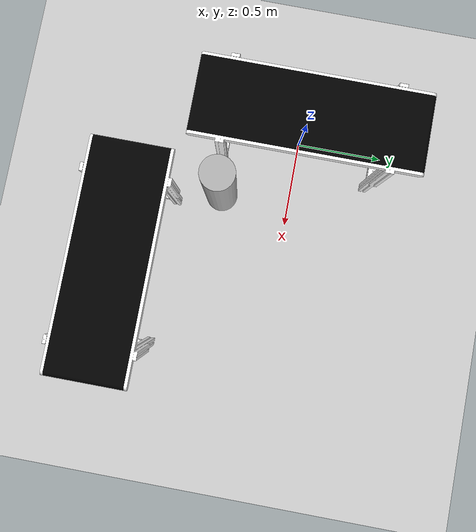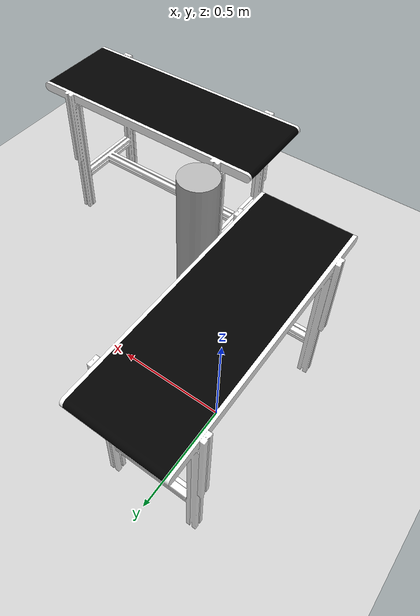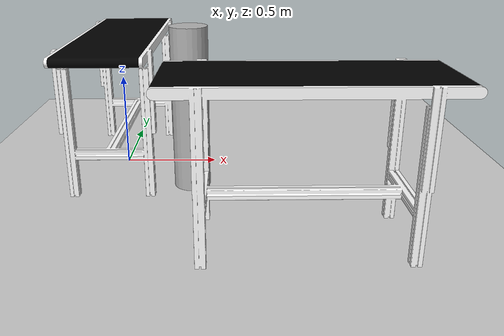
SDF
<?xml version="1.0" ?>
<sdf version="1.9">

  <world name="default">

    <plugin filename="gz-sim-physics-system"
            name="gz::sim::systems::Physics"/>

    <plugin filename="gz-sim-user-commands-system"
            name="gz::sim::systems::UserCommands"/>

    <plugin filename="gz-sim-scene-broadcaster-system"
            name="gz::sim::systems::SceneBroadcaster"/>

    <plugin filename="gz-sim-sensors-system"
            name="gz::sim::systems::Sensors">
      <render_engine>ogre2</render_engine>
    </plugin>

    <plugin filename="libgz_link_attacher.so"
            name="gz_link_attacher::LinkAttacher">

      <robot_model>ur3_robotiq</robot_model>

    </plugin>

    <plugin filename="gz-sim-contact-system" name="gz::sim::systems::Contact">
    </plugin>

    <gravity>0 0 -9.8</gravity>

    <physics name="default" type="ode">
      <max_step_size>0.001</max_step_size>
      <real_time_factor>1.0</real_time_factor>
      <real_time_update_rate>1000</real_time_update_rate>
    </physics>

    <scene>
      <ambient>0.4 0.4 0.4 1</ambient>
      <background>0.7 0.7 0.7 1</background>
    </scene>

    <light type="directional" name="sun">
      <pose>0 0 10 0 0 0</pose>
      <diffuse>1 1 1 1</diffuse>
      <specular>0.2 0.2 0.2 1</specular>
      <direction>-0.5 0.1 -0.9</direction>
    </light>

    <model name="ground_plane">
      <static>true</static>

      <link name="link">

        <collision name="collision">
          <geometry>
            <plane>
              <normal>0 0 1</normal>
              <size>100 100</size>
            </plane>
          </geometry>
        </collision>

        <visual name="visual">
          <geometry>
            <plane>
              <normal>0 0 1</normal>
              <size>100 100</size>
            </plane>
          </geometry>

          <material>
            <ambient>0.8 0.8 0.8 1</ambient>
            <diffuse>0.8 0.8 0.8 1</diffuse>
          </material>
        </visual>

      </link>
    </model>

    <include>
      <uri>model://conveyor_belt</uri>
      <name>conveyor_belt_1</name>
      <pose>0 0 0 0 0 0</pose>
    </include>

    <include>
      <uri>model://conveyor_belt</uri>
      <name>conveyor_belt_2</name>
      <pose>0.9 -0.85 0 0 0 1.57079632679</pose>
    </include>

    <!-- Robot Base (Placeholder) -->
    <model name="robotbase">
      <static>true</static>
      <pose> 0.4 -0.4 0 0 0 0</pose>
      <link name="link">
        <pose>0 0 0.45 0 0 0</pose>
        <visual name="visual">
          <geometry>
            <cylinder>
              <radius>0.09</radius>
              <length>0.8</length>
            </cylinder>
          </geometry>
          <material>
            <ambient>0.3 0.3 0.3 1</ambient>
            <diffuse>0.7 0.7 0.7 1</diffuse>
            <specular>0.01 0.01 0.01 1</specular>
          </material>
        </visual>
        <collision name="collision">
          <geometry>
            <cylinder>
              <radius>0.09</radius>
              <length>0.9</length>
            </cylinder>
          </geometry>
        </collision>
      </link>
    </model>

  </world>

</sdf>

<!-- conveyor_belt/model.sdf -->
<sdf version="1.9">

  <model name="conveyor_belt">

    <static>true</static>

    <link name="link">

      <pose>0 0 0 0 0 0</pose>

      <visual name="visual">

        <pose>0 0 0 0 0 0</pose>

        <geometry>
          <mesh>
            <uri>meshes/conveyor_belt.dae</uri>
          </mesh>
        </geometry>

      </visual>

      <collision name="collision">

        <pose>0 0 0.71 0 0 0</pose>

        <geometry>
          <box>
            <size>0.50 1.20 0.055</size>
          </box>
        </geometry>

        <surface>

          <contact>
            <ode>
              <kp>100000</kp>
              <kd>10</kd>
              <min_depth>0.001</min_depth>
              <max_vel>1.0</max_vel>
            </ode>
          </contact>

          <friction>
            <ode>

              <!--
                La cinta se mueve en el eje Y local.
              -->

              <fdir1>1 0 0</fdir1>

              <mu>2.0</mu>

              <mu2>0.5</mu2>

            </ode>
          </friction>

        </surface>

      </collision>

    </link>

    <!-- TRACK CONTROLLER                                       -->

    <plugin
      filename="gz-sim-track-controller-system"
      name="gz::sim::systems::TrackController">

      <link>link</link>

      <track_orientation>0 0 1.57079632679</track_orientation>

      <min_velocity>-1.0</min_velocity>

      <max_velocity>1.0</max_velocity>

    </plugin>

  </model>

</sdf>
